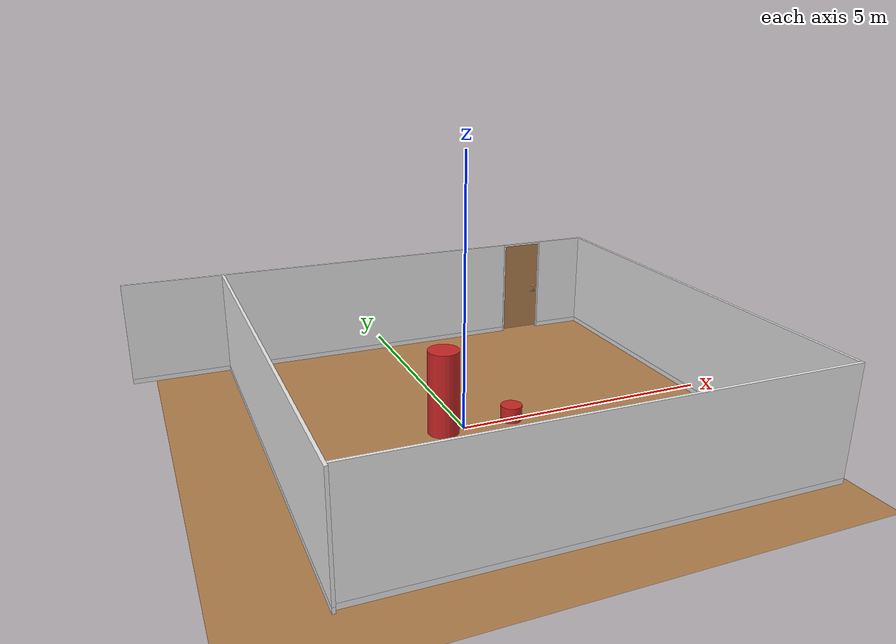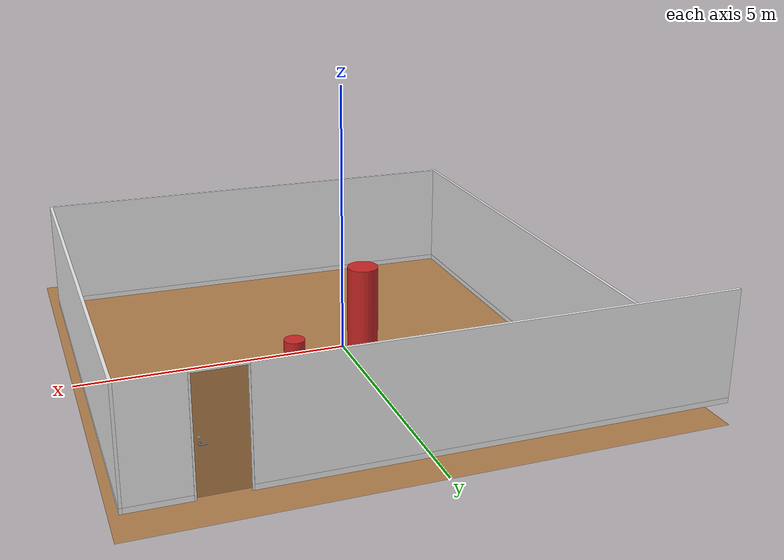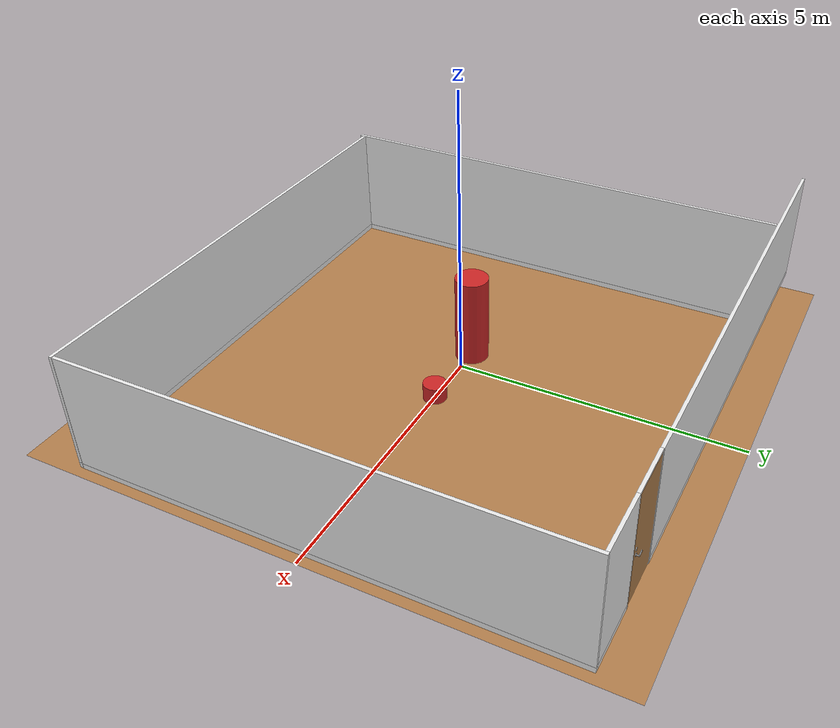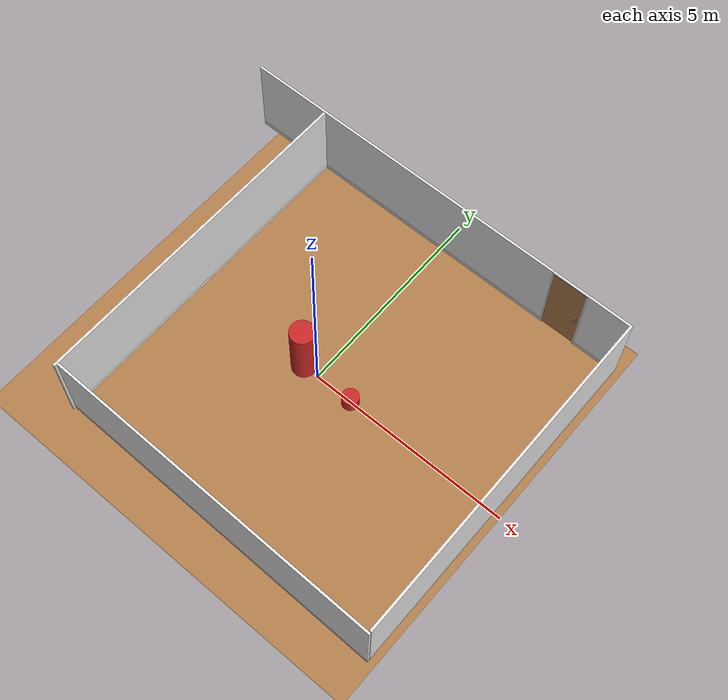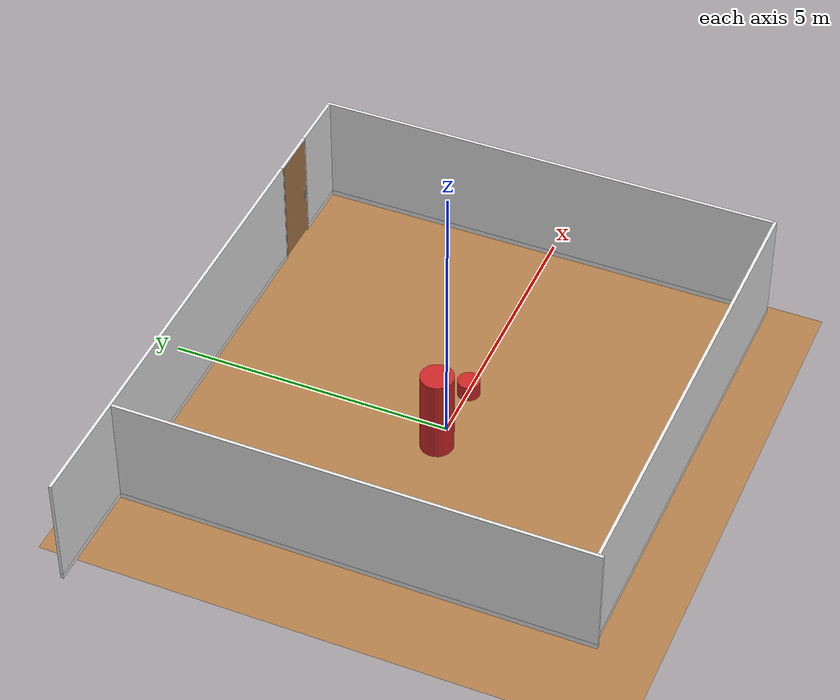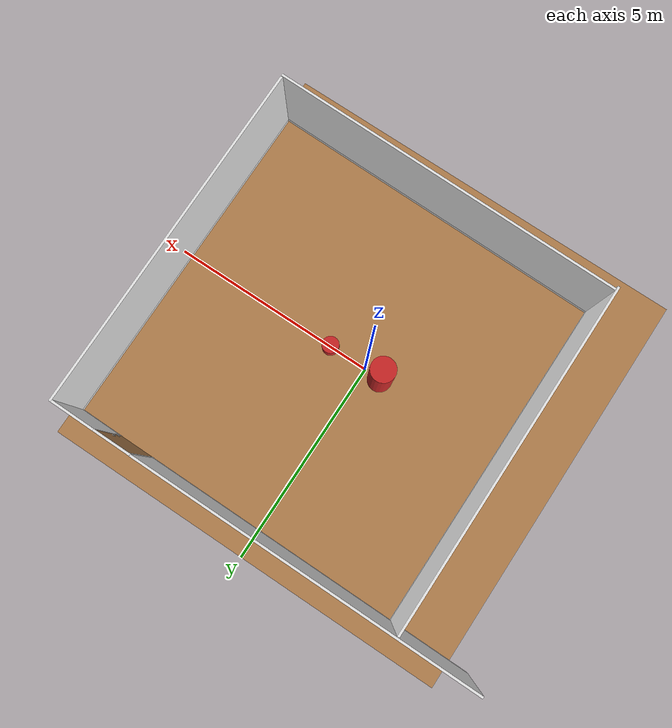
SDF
<sdf version="1.6">
 <world name="default">
  <light name="sun" type="directional">
   <cast_shadows>0</cast_shadows>
   <pose>0 0 10 0 -0 0</pose>
   <diffuse>0.8 0.8 0.8 1</diffuse>
   <specular>0.2 0.2 0.2 1</specular>
   <attenuation>
    <range>1000</range>
    <constant>0.9</constant>
    <linear>0.01</linear>
    <quadratic>0.001</quadratic>
   </attenuation>
   <direction>-0.5 0.1 -0.9</direction>
  </light>
  <physics name="default_physics" default="0" type="ode">
   <max_step_size>0.001</max_step_size>
   <real_time_factor>1</real_time_factor>
   <real_time_update_rate>1000</real_time_update_rate>
  </physics>
  <scene><ambient>0.4 0.4 0.4 1</ambient><background>0.7 0.7 0.7 1</background><shadows>0</shadows></scene>
  <model name="wrc_ground_plane">
   <static>1</static>
   <link name="link">
    <collision name="collision">
     <geometry><plane><normal>0 0 1</normal><size>10 10</size></plane></geometry>
     <surface>
      <contact><collide_bitmask>65535</collide_bitmask></contact>
      <friction><ode><mu>100</mu><mu2>50</mu2></ode></friction>
     </surface>
    </collision>
    <visual name="visual">
     <cast_shadows>0</cast_shadows>
     <geometry><plane><normal>0 0 1</normal><size>10 10</size></plane></geometry>
     <material>
      <script><uri>model://wrc_ground_plane/materials/wood.material</uri><name>WRS/WoodFloor</name></script>
     </material>
    </visual>
   </link>
  </model>
  <magnetic_field>6e-06 2.3e-05 -4.2e-05</magnetic_field>
  <atmosphere type="adiabatic"/>
  <spherical_coordinates>
   <surface_model>EARTH_WGS84</surface_model>
   <latitude_deg>0</latitude_deg>
   <longitude_deg>0</longitude_deg>
   <elevation>0</elevation>
   <heading_deg>0</heading_deg>
  </spherical_coordinates>
  <model name="full_wall_55_8295_2090">
   <link name="link">
    <inertial>
     <mass>50</mass>
     <inertia><ixx>1</ixx><ixy>0</ixy><ixz>0</ixz><iyy>1</iyy><iyz>0</iyz><izz>1</izz></inertia>
    </inertial>
    <visual name="bottom_frame">
     <pose>0 0 0.05 0 -0 0</pose>
     <geometry><box><size>0.055 8.295 0.1</size></box></geometry>
     <material>
      <script><uri>model://base_materials/color/scripts</uri><name>hsr_color/white</name></script>
     </material>
    </visual>
    <collision name="collision_bottom_frame">
     <pose>0 0 0.05 0 -0 0</pose>
     <geometry><box><size>0.055 8.295 0.1</size></box></geometry>
    </collision>
    <visual name="wall">
     <pose>0 0 1.095 0 -0 0</pose>
     <geometry><box><size>0.055 8.295 1.99</size></box></geometry>
     <material>
      <script>
       <uri>model://base_materials/wall/scripts</uri>
       <uri>model://base_materials/wall/textures</uri>
       <name>wall/white_noise</name>
      </script>
     </material>
    </visual>
    <collision name="collision_wall">
     <pose>0 0 1.095 0 -0 0</pose>
     <geometry><box><size>0.055 8.295 1.99</size></box></geometry>
    </collision>
    <velocity_decay><linear>0</linear><angular>0</angular></velocity_decay>
   </link>
   <static>1</static>
   <pose>4.81252 0.172211 0 0 -0 0</pose>
  </model>
  <model name="full_wall_55_8295_2090_clone">
   <link name="link">
    <inertial>
     <mass>50</mass>
     <inertia><ixx>1</ixx><ixy>0</ixy><ixz>0</ixz><iyy>1</iyy><iyz>0</iyz><izz>1</izz></inertia>
    </inertial>
    <visual name="bottom_frame">
     <pose>0 0 0.05 0 -0 0</pose>
     <geometry><box><size>0.055 8.295 0.1</size></box></geometry>
     <material>
      <script><uri>model://base_materials/color/scripts</uri><name>hsr_color/white</name></script>
     </material>
    </visual>
    <collision name="collision_bottom_frame">
     <pose>0 0 0.05 0 -0 0</pose>
     <geometry><box><size>0.055 8.295 0.1</size></box></geometry>
    </collision>
    <visual name="wall">
     <pose>0 0 1.095 0 -0 0</pose>
     <geometry><box><size>0.055 8.295 1.99</size></box></geometry>
     <material>
      <script>
       <uri>model://base_materials/wall/scripts</uri>
       <uri>model://base_materials/wall/textures</uri>
       <name>wall/white_noise</name>
      </script>
     </material>
    </visual>
    <collision name="collision_wall">
     <pose>0 0 1.095 0 -0 0</pose>
     <geometry><box><size>0.055 8.295 1.99</size></box></geometry>
    </collision>
    <velocity_decay><linear>0</linear><angular>0</angular></velocity_decay>
   </link>
   <static>1</static>
   <pose>-1.30065 4.31927 0 0 0 -1.57365</pose>
  </model>
  <model name="full_wall_55_900_2090">
   <link name="link">
    <inertial>
     <mass>50</mass>
     <inertia><ixx>1</ixx><ixy>0</ixy><ixz>0</ixz><iyy>1</iyy><iyz>0</iyz><izz>1</izz></inertia>
    </inertial>
    <visual name="bottom_frame">
     <pose>0 0 0.05 0 -0 0</pose>
     <geometry><box><size>0.055 1.04 0.1</size></box></geometry>
     <material>
      <script><uri>model://base_materials/color/scripts</uri><name>hsr_color/white</name></script>
     </material>
    </visual>
    <collision name="collision_bottom_frame">
     <pose>0 0 0.05 0 -0 0</pose>
     <geometry><box><size>0.055 1.04 0.1</size></box></geometry>
    </collision>
    <visual name="wall">
     <pose>0 0 1.095 0 -0 0</pose>
     <geometry><box><size>0.055 1.04 1.99</size></box></geometry>
     <material>
      <script>
       <uri>model://base_materials/wall/scripts</uri>
       <uri>model://base_materials/wall/textures</uri>
       <name>wall/white_noise</name>
      </script>
     </material>
    </visual>
    <collision name="collision_wall">
     <pose>0 0 1.095 0 -0 0</pose>
     <geometry><box><size>0.055 1.04 1.99</size></box></geometry>
    </collision>
    <velocity_decay><linear>0</linear><angular>0</angular></velocity_decay>
   </link>
   <static>1</static>
   <pose>4.26859 4.29665 0 0 -0 1.56253</pose>
  </model>
  <model name="full_wall_55_8295_2090_0">
   <link name="link">
    <inertial>
     <mass>50</mass>
     <inertia><ixx>1</ixx><ixy>0</ixy><ixz>0</ixz><iyy>1</iyy><iyz>0</iyz><izz>1</izz></inertia>
    </inertial>
    <visual name="bottom_frame">
     <pose>0 0 0.05 0 -0 0</pose>
     <geometry><box><size>0.055 8.295 0.1</size></box></geometry>
     <material>
      <script><uri>model://base_materials/color/scripts</uri><name>hsr_color/white</name></script>
     </material>
    </visual>
    <collision name="collision_bottom_frame">
     <pose>0 0 0.05 0 -0 0</pose>
     <geometry><box><size>0.055 8.295 0.1</size></box></geometry>
    </collision>
    <visual name="wall">
     <pose>0 0 1.095 0 -0 0</pose>
     <geometry><box><size>0.055 8.295 1.99</size></box></geometry>
     <material>
      <script>
       <uri>model://base_materials/wall/scripts</uri>
       <uri>model://base_materials/wall/textures</uri>
       <name>wall/white_noise</name>
      </script>
     </material>
    </visual>
    <collision name="collision_wall">
     <pose>0 0 1.095 0 -0 0</pose>
     <geometry><box><size>0.055 8.295 1.99</size></box></geometry>
    </collision>
    <velocity_decay><linear>0</linear><angular>0</angular></velocity_decay>
   </link>
   <static>1</static>
   <pose>0.687285 -3.96616 0 0 0 -1.58277</pose>
  </model>
  <model name="full_wall_55_8295_2090_1">
   <link name="link">
    <inertial>
     <mass>50</mass>
     <inertia><ixx>1</ixx><ixy>0</ixy><ixz>0</ixz><iyy>1</iyy><iyz>0</iyz><izz>1</izz></inertia>
    </inertial>
    <visual name="bottom_frame">
     <pose>0 0 0.05 0 -0 0</pose>
     <geometry><box><size>0.055 8.295 0.1</size></box></geometry>
     <material>
      <script><uri>model://base_materials/color/scripts</uri><name>hsr_color/white</name></script>
     </material>
    </visual>
    <collision name="collision_bottom_frame">
     <pose>0 0 0.05 0 -0 0</pose>
     <geometry><box><size>0.055 8.295 0.1</size></box></geometry>
    </collision>
    <visual name="wall">
     <pose>0 0 1.095 0 -0 0</pose>
     <geometry><box><size>0.055 8.295 1.99</size></box></geometry>
     <material>
      <script>
       <uri>model://base_materials/wall/scripts</uri>
       <uri>model://base_materials/wall/textures</uri>
       <name>wall/white_noise</name>
      </script>
     </material>
    </visual>
    <collision name="collision_wall">
     <pose>0 0 1.095 0 -0 0</pose>
     <geometry><box><size>0.055 8.295 1.99</size></box></geometry>
    </collision>
    <velocity_decay><linear>0</linear><angular>0</angular></velocity_decay>
   </link>
   <static>1</static>
   <pose>-3.4877 0.144746 0 0 -0 0</pose>
  </model>
  <model name="door_55_900_2090">
   <link name="link">
    <pose>0 0.45 0 0 -0 0</pose>
    <inertial>
     <mass>50</mass>
     <inertia><ixx>1</ixx><ixy>0</ixy><ixz>0</ixz><iyy>1</iyy><iyz>0</iyz><izz>1</izz></inertia>
    </inertial>
    <visual name="door">
     <pose>0 0 1.05 0 -0 0</pose>
     <geometry><box><size>0.055 0.83 2</size></box></geometry>
     <material>
      <script><uri>model://base_materials/wood/scripts/wood.material</uri><name>base_materials/wood</name></script>
     </material>
    </visual>
    <collision name="collision_door">
     <pose>0 0 1.05 0 -0 0</pose>
     <geometry><box><size>0.055 0.83 2</size></box></geometry>
    </collision>
    <visual name="right_frame">
     <pose>0 0.4325 1.025 0 -0 0</pose>
     <geometry><box><size>0.055 0.035 2.05</size></box></geometry>
     <material>
      <script><uri>model://base_materials/color/scripts</uri><name>hsr_color/white</name></script>
     </material>
    </visual>
    <collision name="collision_right_frame">
     <pose>0 0.4325 1.025 0 -0 0</pose>
     <geometry><box><size>0.055 0.035 2.05</size></box></geometry>
    </collision>
    <visual name="left_frame">
     <pose>0 -0.4325 1.025 0 -0 0</pose>
     <geometry><box><size>0.055 0.035 2.05</size></box></geometry>
     <material>
      <script><uri>model://base_materials/color/scripts</uri><name>hsr_color/white</name></script>
     </material>
    </visual>
    <collision name="collision_left_frame">
     <pose>0 -0.4325 1.025 0 -0 0</pose>
     <geometry><box><size>0.055 0.035 2.05</size></box></geometry>
    </collision>
    <visual name="top_frame">
     <pose>0 0 2.07 0 -0 0</pose>
     <geometry><box><size>0.055 0.9 0.04</size></box></geometry>
     <material>
      <script><uri>model://base_materials/color/scripts</uri><name>hsr_color/white</name></script>
     </material>
    </visual>
    <collision name="collision_top_frame">
     <pose>0 0 2.07 0 -0 0</pose>
     <geometry><box><size>0.055 0.9 0.04</size></box></geometry>
    </collision>
    <visual name="handle_front">
     <pose>0.0775 0.285 0.93 1.5708 -0 0</pose>
     <geometry><cylinder><radius>0.01</radius><length>0.1</length></cylinder></geometry>
     <material>
      <script><uri>model://base_materials/color/scripts</uri><name>hsr_color/grey</name></script>
     </material>
    </visual>
    <collision name="collision_handle_front">
     <pose>0.0775 0.285 0.93 1.5708 -0 0</pose>
     <geometry><cylinder><radius>0.01</radius><length>0.1</length></cylinder></geometry>
    </collision>
    <visual name="handle_back">
     <pose>-0.0775 0.285 0.93 1.5708 -0 0</pose>
     <geometry><cylinder><radius>0.01</radius><length>0.1</length></cylinder></geometry>
     <material>
      <script><uri>model://base_materials/color/scripts</uri><name>hsr_color/grey</name></script>
     </material>
    </visual>
    <collision name="collision_handle_back">
     <pose>-0.0775 0.285 0.93 1.5708 -0 0</pose>
     <geometry><cylinder><radius>0.01</radius><length>0.1</length></cylinder></geometry>
    </collision>
    <visual name="handle_center1">
     <pose>0 0.335 0.93 3.14159 1.57079 3.14159</pose>
     <geometry><cylinder><radius>0.01</radius><length>0.155</length></cylinder></geometry>
     <material>
      <script><uri>model://base_materials/color/scripts</uri><name>hsr_color/grey</name></script>
     </material>
    </visual>
    <collision name="collision_center1">
     <pose>0 0.335 0.93 3.14159 1.57079 3.14159</pose>
     <geometry><cylinder><radius>0.01</radius><length>0.155</length></cylinder></geometry>
    </collision>
    <visual name="handle_center2">
     <pose>0 0.335 0.93 3.14159 1.57079 3.14159</pose>
     <geometry><cylinder><radius>0.025</radius><length>0.075</length></cylinder></geometry>
     <material>
      <script><uri>model://base_materials/color/scripts</uri><name>hsr_color/grey</name></script>
     </material>
    </visual>
    <collision name="collision_center1">
     <pose>0 0.335 0.93 3.14159 1.57079 3.14159</pose>
     <geometry><cylinder><radius>0.025</radius><length>0.075</length></cylinder></geometry>
    </collision>
    <visual name="handle_front_right_corner">
     <pose>0.0775 0.335 0.93 0 -0 0</pose>
     <geometry><sphere><radius>0.01</radius></sphere></geometry>
     <material>
      <script><uri>model://base_materials/color/scripts</uri><name>hsr_color/grey</name></script>
     </material>
    </visual>
    <collision name="collision_handle_front_right_corner">
     <pose>0.0775 0.335 0.93 0 -0 0</pose>
     <geometry><sphere><radius>0.01</radius></sphere></geometry>
    </collision>
    <visual name="handle_front_left_corner">
     <pose>0.0775 0.235 0.93 0 -0 0</pose>
     <geometry><sphere><radius>0.01</radius></sphere></geometry>
     <material>
      <script><uri>model://base_materials/color/scripts</uri><name>hsr_color/grey</name></script>
     </material>
    </visual>
    <collision name="collision_handle_front_left_corner">
     <pose>0.0775 0.235 0.93 0 -0 0</pose>
     <geometry><sphere><radius>0.01</radius></sphere></geometry>
    </collision>
    <visual name="handle_back_right_corner">
     <pose>-0.0775 0.335 0.93 0 -0 0</pose>
     <geometry><sphere><radius>0.01</radius></sphere></geometry>
     <material>
      <script><uri>model://base_materials/color/scripts</uri><name>hsr_color/grey</name></script>
     </material>
    </visual>
    <collision name="collision_handle_back_right_corner">
     <pose>-0.0775 0.335 0.93 0 -0 0</pose>
     <geometry><sphere><radius>0.01</radius></sphere></geometry>
    </collision>
    <visual name="handle_back_left_corner">
     <pose>-0.0775 0.235 0.93 0 -0 0</pose>
     <geometry><sphere><radius>0.01</radius></sphere></geometry>
     <material>
      <script><uri>model://base_materials/color/scripts</uri><name>hsr_color/white</name></script>
     </material>
    </visual>
    <collision name="collision_handle_back_left_corner">
     <pose>-0.0775 0.235 0.93 0 -0 0</pose>
     <geometry><sphere><radius>0.01</radius></sphere></geometry>
    </collision>
    <visual name="handle_lock1">
     <pose>0 0.335 1.03 0 -0 0</pose>
     <geometry><box><size>0.075 0.005 0.04</size></box></geometry>
     <material>
      <script><uri>model://base_materials/color/scripts</uri><name>hsr_color/white</name></script>
     </material>
    </visual>
    <collision name="collision_handle_lock1">
     <pose>0 0.335 1.03 0 -0 0</pose>
     <geometry><box><size>0.075 0.005 0.04</size></box></geometry>
    </collision>
    <visual name="handle_lock2">
     <pose>0 0.335 1.03 3.14159 1.57079 3.14159</pose>
     <geometry><cylinder><radius>0.025</radius><length>0.065</length></cylinder></geometry>
     <material>
      <script><uri>model://base_materials/color/scripts</uri><name>hsr_color/white</name></script>
     </material>
    </visual>
    <collision name="collision_handle_lock1">
     <pose>0 0.335 1.03 3.14159 1.57079 3.14159</pose>
     <geometry><cylinder><radius>0.025</radius><length>0.065</length></cylinder></geometry>
    </collision>
    <velocity_decay><linear>0</linear><angular>0</angular></velocity_decay>
   </link>
   <static>1</static>
   <pose>2.84759 4.30281 0 0 0 -1.57383</pose>
  </model>
  <model name="unit_cylinder">
   <link name="link">
    <inertial>
     <mass>1</mass>
     <inertia><ixx>0.145833</ixx><ixy>0</ixy><ixz>0</ixz><iyy>0.145833</iyy><iyz>0</iyz><izz>0.125</izz></inertia>
    </inertial>
    <visual name="visual">
     <geometry><cylinder><radius>0.288897</radius><length>1.57721</length></cylinder></geometry>
     <material>
      <script><name>Gazebo/Red</name><uri>file://media/materials/scripts/gazebo.material</uri></script>
      <shader type="pixel"/>
     </material>
     <cast_shadows>0</cast_shadows>
    </visual>
    <collision name="collision">
     <geometry><cylinder><radius>0.288897</radius><length>1.57721</length></cylinder></geometry>
     <surface>
      <friction>
       <ode><mu>1</mu><mu2>1</mu2><fdir1>0 0 0</fdir1><slip1>0</slip1><slip2>0</slip2></ode>
       <torsional>
        <coefficient>1</coefficient>
        <patch_radius>0</patch_radius>
        <surface_radius>0</surface_radius>
        <use_patch_radius>1</use_patch_radius>
        <ode><slip>0</slip></ode>
       </torsional>
      </friction>
      <bounce><restitution_coefficient>0</restitution_coefficient><threshold>1e+06</threshold></bounce>
      <contact>
       <collide_without_contact>0</collide_without_contact>
       <collide_without_contact_bitmask>1</collide_without_contact_bitmask>
       <collide_bitmask>1</collide_bitmask>
       <ode>
        <soft_cfm>0</soft_cfm>
        <soft_erp>0.2</soft_erp>
        <kp>1e+13</kp>
        <kd>1</kd>
        <max_vel>0.01</max_vel>
        <min_depth>0</min_depth>
       </ode>
       <bullet>
        <split_impulse>1</split_impulse>
        <split_impulse_penetration_threshold>-0.01</split_impulse_penetration_threshold>
        <soft_cfm>0</soft_cfm>
        <soft_erp>0.2</soft_erp>
        <kp>1e+13</kp>
        <kd>1</kd>
       </bullet>
      </contact>
     </surface>
    </collision>
   </link>
   <static>1</static>
   <pose>-0.392615 0.009682 0.788124 0 -0 0</pose>
  </model>
  <model name="unit_cylinder_clone">
   <link name="link">
    <inertial>
     <mass>1</mass>
     <inertia><ixx>0.145833</ixx><ixy>0</ixy><ixz>0</ixz><iyy>0.145833</iyy><iyz>0</iyz><izz>0.125</izz></inertia>
    </inertial>
    <visual name="visual">
     <geometry><cylinder><radius>0.199818</radius><length>0.296693</length></cylinder></geometry>
     <material>
      <script><name>Gazebo/Red</name><uri>file://media/materials/scripts/gazebo.material</uri></script>
      <shader type="pixel"/>
     </material>
     <cast_shadows>0</cast_shadows>
    </visual>
    <collision name="collision">
     <geometry><cylinder><radius>0.199818</radius><length>0.296693</length></cylinder></geometry>
     <surface>
      <friction>
       <ode><mu>1</mu><mu2>1</mu2><fdir1>0 0 0</fdir1><slip1>0</slip1><slip2>0</slip2></ode>
       <torsional>
        <coefficient>1</coefficient>
        <patch_radius>0</patch_radius>
        <surface_radius>0</surface_radius>
        <use_patch_radius>1</use_patch_radius>
        <ode><slip>0</slip></ode>
       </torsional>
      </friction>
      <bounce><restitution_coefficient>0</restitution_coefficient><threshold>1e+06</threshold></bounce>
      <contact>
       <collide_without_contact>0</collide_without_contact>
       <collide_without_contact_bitmask>1</collide_without_contact_bitmask>
       <collide_bitmask>1</collide_bitmask>
       <ode>
        <soft_cfm>0</soft_cfm>
        <soft_erp>0.2</soft_erp>
        <kp>1e+13</kp>
        <kd>1</kd>
        <max_vel>0.01</max_vel>
        <min_depth>0</min_depth>
       </ode>
       <bullet>
        <split_impulse>1</split_impulse>
        <split_impulse_penetration_threshold>-0.01</split_impulse_penetration_threshold>
        <soft_cfm>0</soft_cfm>
        <soft_erp>0.2</soft_erp>
        <kp>1e+13</kp>
        <kd>1</kd>
       </bullet>
      </contact>
     </surface>
    </collision>
   </link>
   <static>1</static>
   <pose>0.9496 -0.005587 0.148834 0 -0 0</pose>
  </model>
  <gravity>0 0 -9.8</gravity>
 </world>
</sdf>
